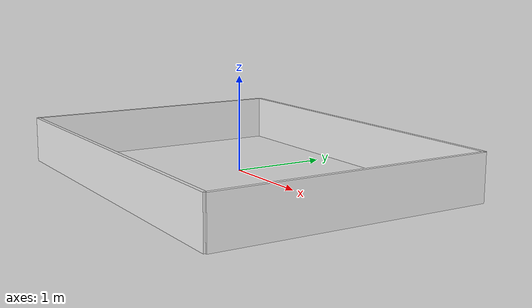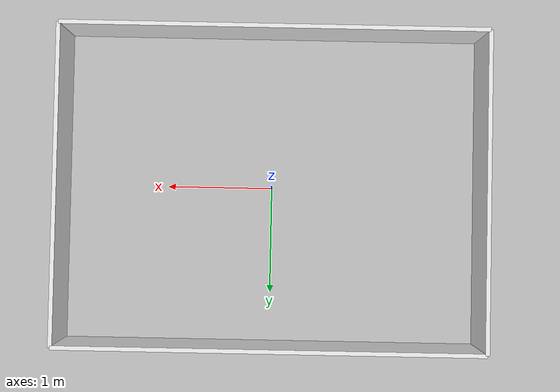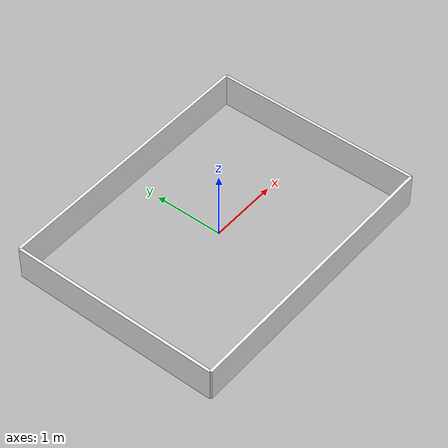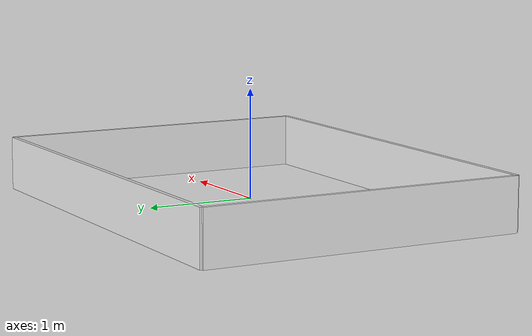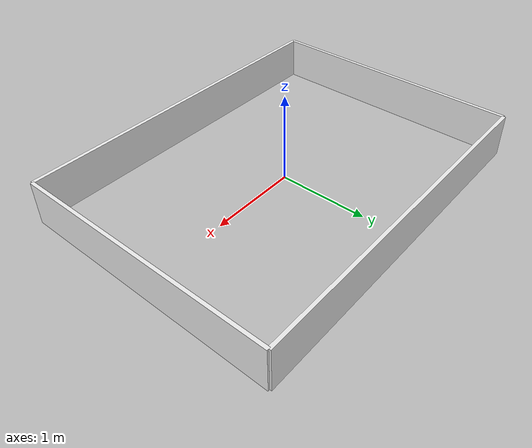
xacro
<?xml version="1.0"?>

<robot name="single-room">

  	<link name="origin">
        <inertial>
            <origin xyz="0 0 0" />
            <mass value="0" />
            <inertia  ixx="0" ixy="0"  ixz="0"  iyy="0"  iyz="0"  izz="0" />
        </inertial>
        <visual>
            <origin xyz="0 0 0" />
            <geometry>
                <box size="0.01 0.01 0.01" />
            </geometry>
        </visual>
        <collision>
            <origin xyz="0 0 0"/>
            <geometry>
                <box size="0.01 0.01 0.01"/>
            </geometry>
        </collision>
  	</link>

	<joint name="join1" type="fixed">
        <origin xyz="2.0 0 0.15" rpy="0 0 0"/>
        <parent link="origin"/>
        <child link="wall_1"/>
  	</joint>

  	<link name="wall_1">
        <inertial>
            <origin xyz="0 0 0" />
            <mass value="10.0" />
            <inertia  ixx="1.0" ixy="0"  ixz="0"  iyy="1.0"  iyz="0"  izz="1.0" />
        </inertial>
        <visual>
            <origin xyz="0 0 0"/>
            <geometry>
                <box size="0.04 3.0 0.5" />
            </geometry>
        </visual>
        <collision>
            <origin xyz="0 0 0"/>
            <geometry>
                <box size="0.04 3.0 0.5"/>
            </geometry>
        </collision>
  	</link>

  	<joint name="join2" type="fixed">
        <origin xyz="-2.0 1.5 0" rpy="0 0 1.570796"/>
        <parent link="wall_1"/>
        <child link="wall_2"/>
  	</joint>

  	<link name="wall_2">
        <inertial>
            <origin xyz="0 0 0" />
            <mass value="10.0" />
            <inertia  ixx="1.0" ixy="0.0"  ixz="0.0"  iyy="1.0"  iyz="0.0"  izz="1.0" />
        </inertial>
        <visual>
            <origin xyz="0 0 0"/>
            <geometry>
                <box size="0.04 4.0 0.5" />
            </geometry>
        </visual>
        <collision>
            <origin xyz="0 0 0"/>
            <geometry>
                <box size="0.04 4.0 0.5"/>
            </geometry>
        </collision>
  	</link>

  	<joint name="join3" type="fixed">
        <origin xyz="-2.0 -1.5 0" rpy="0 0 1.570796"/>
        <parent link="wall_1"/>
        <child link="wall_3"/>
  	</joint>

  	<link name="wall_3">
        <inertial>
            <origin xyz="0 0 0" />
            <mass value="10.0" />
            <inertia  ixx="1.0" ixy="0.0"  ixz="0.0"  iyy="1.0"  iyz="0.0"  izz="1.0" />
        </inertial>
        <visual>
            <origin xyz="0 0 0"/>
            <geometry>
                <box size="0.04 4.0 0.5" />
            </geometry>
        </visual>
        <collision>
            <origin xyz="0 0 0"/>
            <geometry>
                <box size="0.04 4.0 0.5"/>
            </geometry>
        </collision>
  	</link>

  	<joint name="join4" type="fixed">
        <origin xyz="-4.0 0 0" rpy="0 0 0"/>
        <parent link="wall_1"/>
        <child link="wall_4"/>
  	</joint>

  	<link name="wall_4">
        <inertial>
            <origin xyz="0 0 0" />
            <mass value="10.0" />
            <inertia  ixx="1.0" ixy="0.0"  ixz="0.0"  iyy="1.0"  iyz="0.0"  izz="1.0" />
        </inertial>
        <visual>
            <origin xyz="0 0 0"/>
            <geometry>
                <box size="0.04 3.0 0.5" />
            </geometry>
        </visual>
        <collision>
            <origin xyz="0 0 0"/>
            <geometry>
                <box size="0.04 3.0 0.5"/>
            </geometry>
        </collision>
  	</link>

  <gazebo reference="wall_1">
	<material>Gazebo/White</material>
	<selfCollide>false</selfCollide>
  </gazebo>
  <gazebo reference="wall_2">
	<material>Gazebo/White</material>
	<selfCollide>false</selfCollide>
  </gazebo>
  <gazebo reference="wall_3">
	<material>Gazebo/White</material>
	<selfCollide>false</selfCollide>
  </gazebo>
  <gazebo reference="wall_4">
	<material>Gazebo/White</material>
	<selfCollide>false</selfCollide>
  </gazebo>

</robot>
